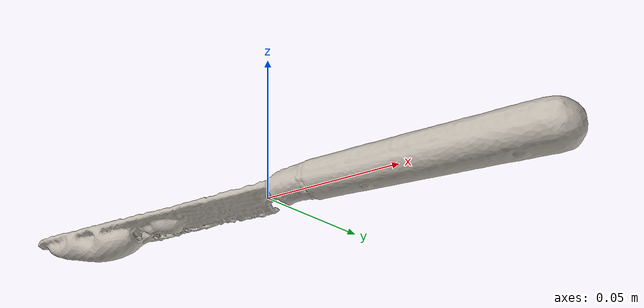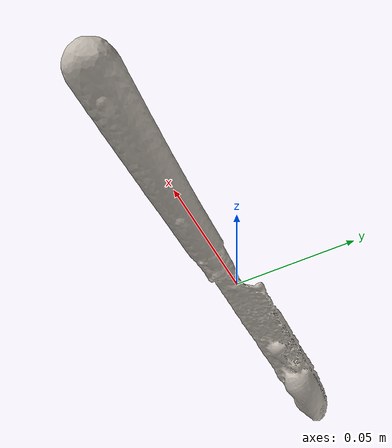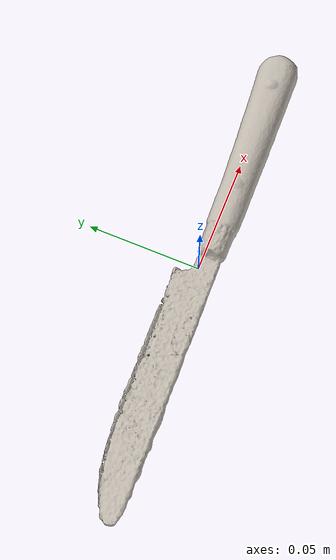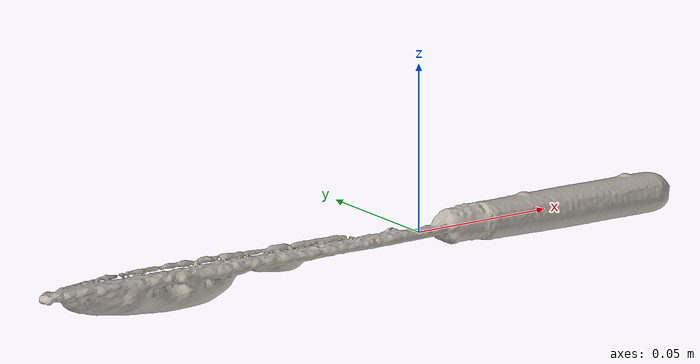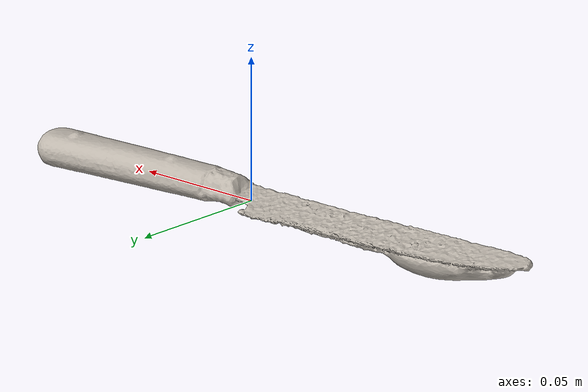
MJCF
<mujoco model="knife">
  <default>
    <default class="visual">
      <geom group="1" type="mesh" contype="0" conaffinity="0"/>
    </default>
    <default class="collision">
      <geom group="0" type="mesh"/>
    </default>
  </default>
  <asset>
    <texture type="2d" name="knife" file="knife.png"/>
    <material name="knife" texture="knife" specular="0.4000000000000001" shininess="0.001"/>
    <mesh name="knife" file="knife.obj"/>
  </asset>
  <worldbody>
  <body>
    <body name="object">
      <geom material="knife" mesh="knife" class="visual"/>
      <geom mesh="knife" class="collision"/>
    </body>
	      <site rgba="0 0 0 0" size="0.005" pos="0 0 -0.04" name="bottom_site" />
	      <site rgba="0 0 0 0" size="0.005" pos="0 0 0.04" name="top_site" />
	      <site rgba="0 0 0 0" size="0.005" pos="0.005 0.005 0" name="horizontal_radius_site" />
   </body>
  </worldbody>
</mujoco>
